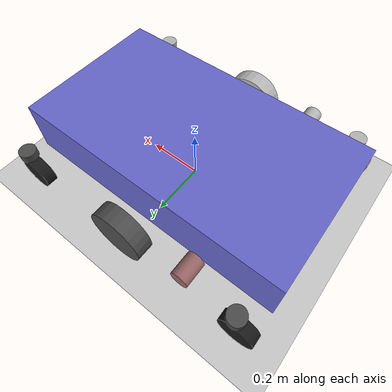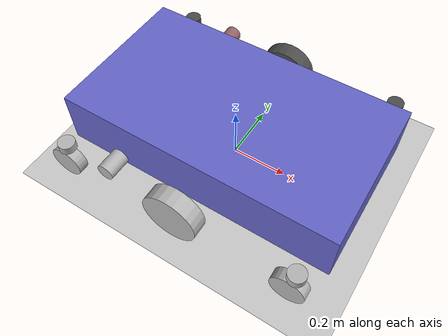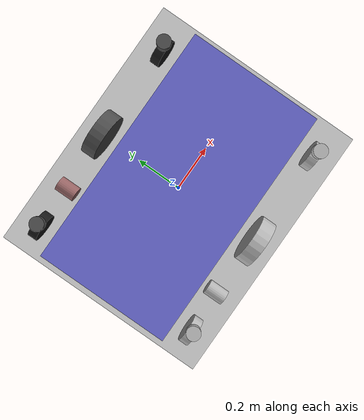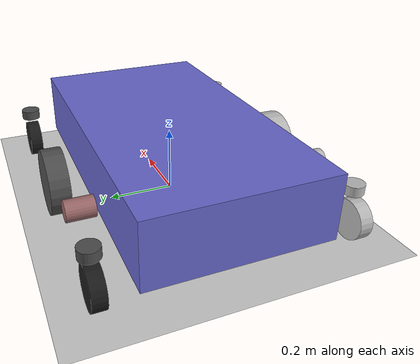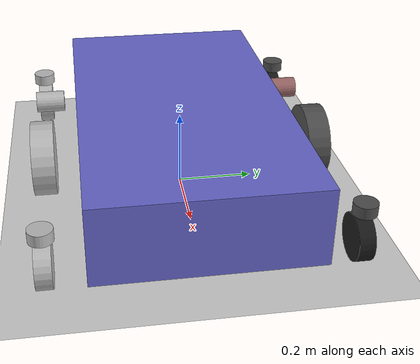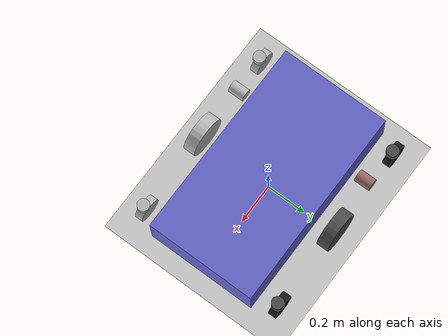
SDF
<?xml version="1.0" ?>
<sdf version="1.6">
    <world name="default">
        <physics name="1ms" type="dart">
            <max_step_size>0.001</max_step_size>
            <real_time_factor>1.0</real_time_factor>
        </physics>
        <plugin filename="libignition-gazebo-physics-system.so" name="ignition::gazebo::systems::Physics">
        </plugin>
        <plugin filename="libignition-gazebo-user-commands-system.so" name="ignition::gazebo::systems::UserCommands">
        </plugin>
        <plugin filename="libignition-gazebo-scene-broadcaster-system.so" name="ignition::gazebo::systems::SceneBroadcaster">
        </plugin>

        <light type="directional" name="sun">
            <cast_shadows>true</cast_shadows>
            <pose>0 0 10 0 0 0</pose>
            <diffuse>0.8 0.8 0.8 1</diffuse>
            <specular>0.2 0.2 0.2 1</specular>
            <attenuation>
                <range>1000</range>
                <constant>0.9</constant>
                <linear>0.01</linear>
                <quadratic>0.001</quadratic>
            </attenuation>
            <direction>-0.5 0.1 -0.9</direction>
        </light>

        <model name="ground_plane">
            <static>true</static>
            <link name="link">
                <collision name="collision">
                    <geometry>
                        <plane>
                            <normal>0 0 1</normal>
                        </plane>
                    </geometry>
                </collision>
                <visual name="visual">
                    <geometry>
                        <plane>
                            <normal>0 0 1</normal>
                            <size>100 100</size>
                        </plane>
                    </geometry>
                    <material>
                        <ambient>0.8 0.8 0.8 1</ambient>
                        <diffuse>0.8 0.8 0.8 1</diffuse>
                        <specular>0.8 0.8 0.8 1</specular>
                    </material>
                </visual>
            </link>
        </model>

        <model name='thirabot'>
            <link name='base_footprint'>
                <pose frame=''>0 0 0 0 -0 0</pose>
                <inertial>
                    <pose frame=''>0 0 0.15 0 -0 0</pose>
                    <mass>100</mass>
                    <inertia>
                        <ixx>2.85417</ixx>
                        <ixy>0</ixy>
                        <ixz>0</ixz>
                        <iyy>8.66667</iyy>
                        <iyz>0</iyz>
                        <izz>10.8542</izz>
                    </inertia>
                </inertial>
                <collision name='base_footprint_fixed_joint_lump__base_link_collision'>
                    <pose frame=''>0 0 0.15 0 -0 0</pose>
                    <geometry>
                        <box>
                            <size>1 0.55 0.2</size>
                        </box>
                    </geometry>
                </collision>
                <visual name='base_footprint_fixed_joint_lump__base_link_visual'>
                    <pose frame=''>0 0 0.15 0 -0 0</pose>
                    <geometry>
                        <box>
                            <size>1 0.55 0.2</size>
                        </box>
                    </geometry>
                    <material>
                        <ambient>0.4 0.4 0.8 1</ambient>
                        <diffuse>0.4 0.4 0.8 1</diffuse>
                        <specular>0.4 0.4 0.8 1</specular>
                    </material>
                </visual>
            </link>

            <link name='l_bogie_suspension'>
                <pose frame=''>-0.25 0.36 0.15 0 -0 0</pose>
                <inertial>
                    <pose frame=''>0 -0.01 0 1.5708 -0 0</pose>
                    <mass>2</mass>
                    <inertia>
                        <ixx>0.00151667</ixx>
                        <ixy>0</ixy>
                        <ixz>0</ixz>
                        <iyy>0.00151667</iyy>
                        <iyz>0</iyz>
                        <izz>0.0009</izz>
                    </inertia>
                </inertial>
                <collision name='l_bogie_suspension_collision'>
                    <pose frame=''>0 -0.01 0 1.5708 -0 0</pose>
                    <geometry>
                        <cylinder>
                            <length>0.08</length>
                            <radius>0.03</radius>
                        </cylinder>
                    </geometry>
                </collision>
                <visual name='l_bogie_suspension_visual'>
                    <pose frame=''>0 -0.01 0 1.5708 -0 0</pose>
                    <geometry>
                        <cylinder>
                            <length>0.08</length>
                            <radius>0.03</radius>
                        </cylinder>
                    </geometry>
                    <material>
                        <ambient>0.6 0.4 0.4 1</ambient>
                        <diffuse>0.6 0.4 0.4 1</diffuse>
                        <specular>0.6 0.4 0.4 1</specular>
                    </material>
                </visual>
            </link>

            <joint name='l_bogie_suspension_joint' type='revolute'>
                <child>l_bogie_suspension</child>
                <parent>base_footprint</parent>
                <axis>
                    <xyz>0 1 0</xyz>
                    <limit>
                        <lower>-3.14159</lower>
                        <upper>3.14159</upper>
                        <effort>1000</effort>
                        <velocity>0.1</velocity>
                    </limit>
                    <dynamics>
                        <spring_reference>0</spring_reference>
                        <spring_stiffness>0</spring_stiffness>
                    </dynamics>
                    <use_parent_model_frame>1</use_parent_model_frame>
                </axis>
            </joint>

            <link name='l_rear_caster_rotate'>
                <pose frame=''>-0.43 0.37 0.15 0 -0 0</pose>
                <inertial>
                    <pose frame=''>0 0 0 0 -0 0</pose>
                    <mass>2</mass>
                    <inertia>
                        <ixx>0.0006</ixx>
                        <ixy>0</ixy>
                        <ixz>0</ixz>
                        <iyy>0.0006</iyy>
                        <iyz>0</iyz>
                        <izz>0.0009</izz>
                    </inertia>
                </inertial>
                <collision name='l_rear_caster_rotate_collision'>
                    <pose frame=''>0 0 0 0 -0 0</pose>
                    <geometry>
                        <cylinder>
                            <length>0.03</length>
                            <radius>0.03</radius>
                        </cylinder>
                    </geometry>
                </collision>
                <visual name='l_rear_caster_rotate_visual'>
                    <pose frame=''>0 0 0 0 -0 0</pose>
                    <geometry>
                        <cylinder>
                            <length>0.03</length>
                            <radius>0.03</radius>
                        </cylinder>
                    </geometry>
                    <material>
                        <ambient>0.3 0.3 0.3 1</ambient>
                        <diffuse>0.3 0.3 0.3 1</diffuse>
                        <specular>0.3 0.3 0.3 1</specular>
                    </material>
                </visual>
            </link>

            <joint name='l_rear_caster_rotate_joint' type='revolute'>
                <child>l_rear_caster_rotate</child>
                <parent>l_bogie_suspension</parent>
                <axis>
                    <xyz>0 0 1</xyz>
                    <limit>
                        <lower>-1e+16</lower>
                        <upper>1e+16</upper>
                    </limit>
                    <dynamics>
                        <spring_reference>0</spring_reference>
                        <spring_stiffness>0</spring_stiffness>
                    </dynamics>
                    <use_parent_model_frame>1</use_parent_model_frame>
                </axis>
            </joint>

            <link name='l_rear_caster_wheel'>
                <pose frame=''>-0.445 0.37 0.06 0 -0 0</pose>
                <inertial>
                    <pose frame=''>0 0 0 1.5708 -0 0</pose>
                    <mass>2</mass>
                    <inertia>
                        <ixx>0.00206667</ixx>
                        <ixy>0</ixy>
                        <ixz>0</ixz>
                        <iyy>0.00206667</iyy>
                        <iyz>0</iyz>
                        <izz>0.0036</izz>
                    </inertia>
                </inertial>
                <collision name='l_rear_caster_wheel_collision'>
                    <pose frame=''>0 0 0 1.5708 -0 0</pose>
                    <geometry>
                        <cylinder>
                            <length>0.04</length>
                            <radius>0.06</radius>
                        </cylinder>
                    </geometry>
                    <surface>
                        <contact>
                            <ode>
                                <kp>1e+07</kp>
                                <kd>1</kd>
                                <min_depth>0.01</min_depth>
                            </ode>
                        </contact>
                        <friction>
                            <ode>
                                <mu2>1</mu2>
                            </ode>
                        </friction>
                    </surface>
                </collision>
                <visual name='l_rear_caster_wheel_visual'>
                    <pose frame=''>0 0 0 1.5708 -0 0</pose>
                    <geometry>
                        <cylinder>
                            <length>0.04</length>
                            <radius>0.06</radius>
                        </cylinder>
                    </geometry>
                    <material>
                        <ambient>0.1 0.1 0.1 1</ambient>
                        <diffuse>0.1 0.1 0.1 1</diffuse>
                        <specular>0.1 0.1 0.1 1</specular>
                    </material>
                </visual>
                <gravity>1</gravity>
                <velocity_decay/>
            </link>

            <joint name='l_rear_caster_wheel_joint' type='revolute'>
                <child>l_rear_caster_wheel</child>
                <parent>l_rear_caster_rotate</parent>
                <axis>
                    <xyz>0 1 0</xyz>
                    <limit>
                        <lower>-1e+16</lower>
                        <upper>1e+16</upper>
                    </limit>
                    <dynamics>
                        <spring_reference>0</spring_reference>
                        <spring_stiffness>0</spring_stiffness>
                    </dynamics>
                    <use_parent_model_frame>1</use_parent_model_frame>
                </axis>
            </joint>

            <link name='l_wheel'>
                <pose frame=''>0 0.37 0.1 0 -0 0</pose>
                <inertial>
                    <pose frame=''>0 0 0 1.5708 -0 0</pose>
                    <mass>2</mass>
                    <inertia>
                        <ixx>0.2</ixx>
                        <ixy>0</ixy>
                        <ixz>0</ixz>
                        <iyy>0.2</iyy>
                        <iyz>0</iyz>
                        <izz>0.2</izz>
                    </inertia>
                </inertial>
                <collision name='l_wheel_collision'>
                    <pose frame=''>0 0 0 1.5708 -0 0</pose>
                    <geometry>
                        <cylinder>
                            <length>0.06</length>
                            <radius>0.1</radius>
                        </cylinder>
                    </geometry>
                    <surface>
                        <contact>
                            <ode>
                                <kp>1e+07</kp>
                                <kd>1</kd>
                                <min_depth>0.01</min_depth>
                            </ode>
                        </contact>
                        <friction>
                            <ode>
                                <mu2>200</mu2>
                            </ode>
                        </friction>
                    </surface>
                </collision>
                <visual name='l_wheel_visual'>
                    <pose frame=''>0 0 0 1.5708 -0 0</pose>
                    <geometry>
                        <cylinder>
                            <length>0.06</length>
                            <radius>0.1</radius>
                        </cylinder>
                    </geometry>
                    <material>
                        <ambient>0.3 0.3 0.3 1</ambient>
                        <diffuse>0.3 0.3 0.3 1</diffuse>
                        <specular>0.3 0.3 0.3 1</specular>
                    </material>
                </visual>
                <gravity>1</gravity>
                <velocity_decay/>
            </link>
            <joint name='l_wheel_joint' type='revolute'>
                <child>l_wheel</child>
                <parent>l_bogie_suspension</parent>
                <axis>
                    <xyz>0 1 0</xyz>
                    <limit>
                        <lower>-1e+16</lower>
                        <upper>1e+16</upper>
                    </limit>
                    <dynamics>
                        <spring_reference>0</spring_reference>
                        <spring_stiffness>0</spring_stiffness>
                    </dynamics>
                    <use_parent_model_frame>1</use_parent_model_frame>
                </axis>
            </joint>
            <link name='l_front_caster_rotate'>
                <pose frame=''>0.43 0.37 0.15 0 -0 0</pose>
                <inertial>
                    <pose frame=''>0 0 0 0 -0 0</pose>
                    <mass>2</mass>
                    <inertia>
                        <ixx>0.0006</ixx>
                        <ixy>0</ixy>
                        <ixz>0</ixz>
                        <iyy>0.0006</iyy>
                        <iyz>0</iyz>
                        <izz>0.0009</izz>
                    </inertia>
                </inertial>
                <collision name='l_front_caster_rotate_collision'>
                    <pose frame=''>0 0 0 0 -0 0</pose>
                    <geometry>
                        <cylinder>
                            <length>0.03</length>
                            <radius>0.03</radius>
                        </cylinder>
                    </geometry>
                </collision>
                <visual name='l_front_caster_rotate_visual'>
                    <pose frame=''>0 0 0 0 -0 0</pose>
                    <geometry>
                        <cylinder>
                            <length>0.03</length>
                            <radius>0.03</radius>
                        </cylinder>
                    </geometry>
                    <material>
                        <ambient>0.3 0.3 0.3 1</ambient>
                        <diffuse>0.3 0.3 0.3 1</diffuse>
                        <specular>0.3 0.3 0.3 1</specular>
                    </material>
                </visual>
            </link>
            <joint name='l_front_caster_rotate_joint' type='revolute'>
                <child>l_front_caster_rotate</child>
                <parent>base_footprint</parent>
                <axis>
                    <xyz>0 0 1</xyz>
                    <limit>
                        <lower>-1e+16</lower>
                        <upper>1e+16</upper>
                    </limit>
                    <dynamics>
                        <spring_reference>0</spring_reference>
                        <spring_stiffness>0</spring_stiffness>
                    </dynamics>
                    <use_parent_model_frame>1</use_parent_model_frame>
                </axis>
            </joint>
            <link name='l_front_caster_wheel'>
                <pose frame=''>0.415 0.37 0.06 0 -0 0</pose>
                <inertial>
                    <pose frame=''>0 0 0 1.5708 -0 0</pose>
                    <mass>2</mass>
                    <inertia>
                        <ixx>0.00206667</ixx>
                        <ixy>0</ixy>
                        <ixz>0</ixz>
                        <iyy>0.00206667</iyy>
                        <iyz>0</iyz>
                        <izz>0.0036</izz>
                    </inertia>
                </inertial>
                <collision name='l_front_caster_wheel_collision'>
                    <pose frame=''>0 0 0 1.5708 -0 0</pose>
                    <geometry>
                        <cylinder>
                            <length>0.04</length>
                            <radius>0.06</radius>
                        </cylinder>
                    </geometry>
                    <surface>
                        <contact>
                            <ode>
                                <kp>1e+07</kp>
                                <kd>1</kd>
                                <min_depth>0.01</min_depth>
                            </ode>
                        </contact>
                        <friction>
                            <ode>
                                <mu2>1</mu2>
                            </ode>
                        </friction>
                    </surface>
                </collision>
                <visual name='l_front_caster_wheel_visual'>
                    <pose frame=''>0 0 0 1.5708 -0 0</pose>
                    <geometry>
                        <cylinder>
                            <length>0.04</length>
                            <radius>0.06</radius>
                        </cylinder>
                    </geometry>
                    <material>
                        <ambient>0.1 0.1 0.1 1</ambient>
                        <diffuse>0.1 0.1 0.1 1</diffuse>
                        <specular>0.1 0.1 0.1 1</specular>
                    </material>
                </visual>
                <gravity>1</gravity>
                <velocity_decay/>
            </link>
            <joint name='l_front_caster_wheel_joint' type='revolute'>
                <child>l_front_caster_wheel</child>
                <parent>l_front_caster_rotate</parent>
                <axis>
                    <xyz>0 1 0</xyz>
                    <limit>
                        <lower>-1e+16</lower>
                        <upper>1e+16</upper>
                    </limit>
                    <dynamics>
                        <spring_reference>0</spring_reference>
                        <spring_stiffness>0</spring_stiffness>
                    </dynamics>
                    <use_parent_model_frame>1</use_parent_model_frame>
                </axis>
            </joint>
            <link name='r_bogie_suspension'>
                <pose frame=''>-0.25 -0.36 0.15 0 -0 0</pose>
                <inertial>
                    <pose frame=''>0 0.01 0 1.5708 -0 0</pose>
                    <mass>2</mass>
                    <inertia>
                        <ixx>0.00151667</ixx>
                        <ixy>0</ixy>
                        <ixz>0</ixz>
                        <iyy>0.00151667</iyy>
                        <iyz>0</iyz>
                        <izz>0.0009</izz>
                    </inertia>
                </inertial>
                <collision name='r_bogie_suspension_collision'>
                    <pose frame=''>0 0.01 0 1.5708 -0 0</pose>
                    <geometry>
                        <cylinder>
                            <length>0.08</length>
                            <radius>0.03</radius>
                        </cylinder>
                    </geometry>
                </collision>
                <visual name='r_bogie_suspension_visual'>
                    <pose frame=''>0 0.01 0 1.5708 -0 0</pose>
                    <geometry>
                        <cylinder>
                            <length>0.08</length>
                            <radius>0.03</radius>
                        </cylinder>
                    </geometry>
                </visual>
            </link>
            <joint name='r_bogie_suspension_joint' type='revolute'>
                <child>r_bogie_suspension</child>
                <parent>base_footprint</parent>
                <axis>
                    <xyz>0 1 0</xyz>
                    <limit>
                        <lower>-3.14159</lower>
                        <upper>3.14159</upper>
                        <effort>1000</effort>
                        <velocity>0.1</velocity>
                    </limit>
                    <dynamics>
                        <spring_reference>0</spring_reference>
                        <spring_stiffness>0</spring_stiffness>
                    </dynamics>
                    <use_parent_model_frame>1</use_parent_model_frame>
                </axis>
            </joint>
            <link name='r_rear_caster_rotate'>
                <pose frame=''>-0.43 -0.37 0.15 0 -0 0</pose>
                <inertial>
                    <pose frame=''>0 0 0 0 -0 0</pose>
                    <mass>2</mass>
                    <inertia>
                        <ixx>0.0006</ixx>
                        <ixy>0</ixy>
                        <ixz>0</ixz>
                        <iyy>0.0006</iyy>
                        <iyz>0</iyz>
                        <izz>0.0009</izz>
                    </inertia>
                </inertial>
                <collision name='r_rear_caster_rotate_collision'>
                    <pose frame=''>0 0 0 0 -0 0</pose>
                    <geometry>
                        <cylinder>
                            <length>0.03</length>
                            <radius>0.03</radius>
                        </cylinder>
                    </geometry>
                </collision>
                <visual name='r_rear_caster_rotate_visual'>
                    <pose frame=''>0 0 0 0 -0 0</pose>
                    <geometry>
                        <cylinder>
                            <length>0.03</length>
                            <radius>0.03</radius>
                        </cylinder>
                    </geometry>
                </visual>
            </link>
            <joint name='r_rear_caster_rotate_joint' type='revolute'>
                <child>r_rear_caster_rotate</child>
                <parent>r_bogie_suspension</parent>
                <axis>
                    <xyz>0 0 1</xyz>
                    <limit>
                        <lower>-1e+16</lower>
                        <upper>1e+16</upper>
                    </limit>
                    <dynamics>
                        <spring_reference>0</spring_reference>
                        <spring_stiffness>0</spring_stiffness>
                    </dynamics>
                    <use_parent_model_frame>1</use_parent_model_frame>
                </axis>
            </joint>
            <link name='r_rear_caster_wheel'>
                <pose frame=''>-0.445 -0.37 0.06 0 -0 0</pose>
                <inertial>
                    <pose frame=''>0 0 0 1.5708 -0 0</pose>
                    <mass>2</mass>
                    <inertia>
                        <ixx>0.00206667</ixx>
                        <ixy>0</ixy>
                        <ixz>0</ixz>
                        <iyy>0.00206667</iyy>
                        <iyz>0</iyz>
                        <izz>0.0036</izz>
                    </inertia>
                </inertial>
                <collision name='r_rear_caster_wheel_collision'>
                    <pose frame=''>0 0 0 1.5708 -0 0</pose>
                    <geometry>
                        <cylinder>
                            <length>0.04</length>
                            <radius>0.06</radius>
                        </cylinder>
                    </geometry>
                    <surface>
                        <contact>
                            <ode>
                                <kp>1e+07</kp>
                                <kd>1</kd>
                                <min_depth>0.01</min_depth>
                            </ode>
                        </contact>
                        <friction>
                            <ode>
                                <mu2>1</mu2>
                            </ode>
                        </friction>
                    </surface>
                </collision>
                <visual name='r_rear_caster_wheel_visual'>
                    <pose frame=''>0 0 0 1.5708 -0 0</pose>
                    <geometry>
                        <cylinder>
                            <length>0.04</length>
                            <radius>0.06</radius>
                        </cylinder>
                    </geometry>

                </visual>
                <gravity>1</gravity>
                <velocity_decay/>
            </link>
            <joint name='r_rear_caster_wheel_joint' type='revolute'>
                <child>r_rear_caster_wheel</child>
                <parent>r_rear_caster_rotate</parent>
                <axis>
                    <xyz>0 1 0</xyz>
                    <limit>
                        <lower>-1e+16</lower>
                        <upper>1e+16</upper>
                    </limit>
                    <dynamics>
                        <spring_reference>0</spring_reference>
                        <spring_stiffness>0</spring_stiffness>
                    </dynamics>
                    <use_parent_model_frame>1</use_parent_model_frame>
                </axis>
            </joint>
            <link name='r_wheel'>
                <pose frame=''>0 -0.37 0.1 0 -0 0</pose>
                <inertial>
                    <pose frame=''>0 0 0 1.5708 -0 0</pose>
                    <mass>2</mass>
                    <inertia>
                        <ixx>0.2</ixx>
                        <ixy>0</ixy>
                        <ixz>0</ixz>
                        <iyy>0.2</iyy>
                        <iyz>0</iyz>
                        <izz>0.2</izz>
                    </inertia>
                </inertial>
                <collision name='r_wheel_collision'>
                    <pose frame=''>0 0 0 1.5708 -0 0</pose>
                    <geometry>
                        <cylinder>
                            <length>0.06</length>
                            <radius>0.1</radius>
                        </cylinder>
                    </geometry>
                    <surface>
                        <contact>
                            <ode>
                                <kp>1e+07</kp>
                                <kd>1</kd>
                                <min_depth>0.01</min_depth>
                            </ode>
                        </contact>
                        <friction>
                            <ode>
                                <mu2>200</mu2>
                            </ode>
                        </friction>
                    </surface>
                </collision>
                <visual name='r_wheel_visual'>
                    <pose frame=''>0 0 0 1.5708 -0 0</pose>
                    <geometry>
                        <cylinder>
                            <length>0.06</length>
                            <radius>0.1</radius>
                        </cylinder>
                    </geometry>

                </visual>
                <gravity>1</gravity>
                <velocity_decay/>
            </link>
            <joint name='r_wheel_joint' type='revolute'>
                <child>r_wheel</child>
                <parent>r_bogie_suspension</parent>
                <axis>
                    <xyz>0 1 0</xyz>
                    <limit>
                        <lower>-1e+16</lower>
                        <upper>1e+16</upper>
                    </limit>
                    <dynamics>
                        <spring_reference>0</spring_reference>
                        <spring_stiffness>0</spring_stiffness>
                    </dynamics>
                    <use_parent_model_frame>1</use_parent_model_frame>
                </axis>
            </joint>
            <link name='r_front_caster_rotate'>
                <pose frame=''>0.43 -0.37 0.15 0 -0 0</pose>
                <inertial>
                    <pose frame=''>0 0 0 0 -0 0</pose>
                    <mass>2</mass>
                    <inertia>
                        <ixx>0.0006</ixx>
                        <ixy>0</ixy>
                        <ixz>0</ixz>
                        <iyy>0.0006</iyy>
                        <iyz>0</iyz>
                        <izz>0.0009</izz>
                    </inertia>
                </inertial>
                <collision name='r_front_caster_rotate_collision'>
                    <pose frame=''>0 0 0 0 -0 0</pose>
                    <geometry>
                        <cylinder>
                            <length>0.03</length>
                            <radius>0.03</radius>
                        </cylinder>
                    </geometry>
                </collision>
                <visual name='r_front_caster_rotate_visual'>
                    <pose frame=''>0 0 0 0 -0 0</pose>
                    <geometry>
                        <cylinder>
                            <length>0.03</length>
                            <radius>0.03</radius>
                        </cylinder>
                    </geometry>
                </visual>
            </link>
            <joint name='r_front_caster_rotate_joint' type='revolute'>
                <child>r_front_caster_rotate</child>
                <parent>base_footprint</parent>
                <axis>
                    <xyz>0 0 1</xyz>
                    <limit>
                        <lower>-1e+16</lower>
                        <upper>1e+16</upper>
                    </limit>
                    <dynamics>
                        <spring_reference>0</spring_reference>
                        <spring_stiffness>0</spring_stiffness>
                    </dynamics>
                    <use_parent_model_frame>1</use_parent_model_frame>
                </axis>
            </joint>
            <link name='r_front_caster_wheel'>
                <pose frame=''>0.415 -0.37 0.06 0 -0 0</pose>
                <inertial>
                    <pose frame=''>0 0 0 1.5708 -0 0</pose>
                    <mass>2</mass>
                    <inertia>
                        <ixx>0.00206667</ixx>
                        <ixy>0</ixy>
                        <ixz>0</ixz>
                        <iyy>0.00206667</iyy>
                        <iyz>0</iyz>
                        <izz>0.0036</izz>
                    </inertia>
                </inertial>
                <collision name='r_front_caster_wheel_collision'>
                    <pose frame=''>0 0 0 1.5708 -0 0</pose>
                    <geometry>
                        <cylinder>
                            <length>0.04</length>
                            <radius>0.06</radius>
                        </cylinder>
                    </geometry>
                    <surface>
                        <contact>
                            <ode>
                                <kp>1e+07</kp>
                                <kd>1</kd>
                                <min_depth>0.01</min_depth>
                            </ode>
                        </contact>
                        <friction>
                            <ode>
                                <mu2>1</mu2>
                            </ode>
                        </friction>
                    </surface>
                </collision>
                <visual name='r_front_caster_wheel_visual'>
                    <pose frame=''>0 0 0 1.5708 -0 0</pose>
                    <geometry>
                        <cylinder>
                            <length>0.04</length>
                            <radius>0.06</radius>
                        </cylinder>
                    </geometry>

                </visual>
                <gravity>1</gravity>
                <velocity_decay/>
            </link>
            <joint name='r_front_caster_wheel_joint' type='revolute'>
                <child>r_front_caster_wheel</child>
                <parent>r_front_caster_rotate</parent>
                <axis>
                    <xyz>0 1 0</xyz>
                    <limit>
                        <lower>-1e+16</lower>
                        <upper>1e+16</upper>
                    </limit>
                    <dynamics>
                        <spring_reference>0</spring_reference>
                        <spring_stiffness>0</spring_stiffness>
                    </dynamics>
                    <use_parent_model_frame>1</use_parent_model_frame>
                </axis>
            </joint>
            <static>0</static>

            <plugin filename="libignition-gazebo-diff-drive-system.so" name="ignition::gazebo::systems::DiffDrive">
                <left_joint>l_wheel_joint</left_joint>
                <right_joint>r_wheel_joint</right_joint>
                <wheel_separation>0.8</wheel_separation>
                <wheel_radius>0.1</wheel_radius>
            </plugin>
        </model>
    </world>
</sdf>
